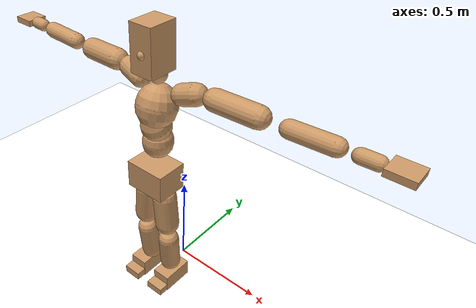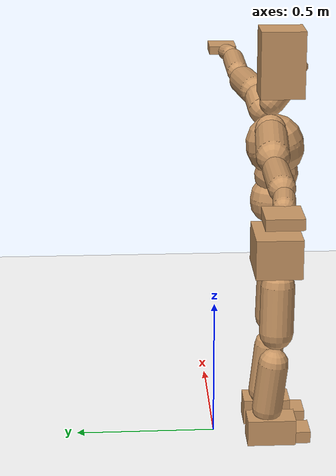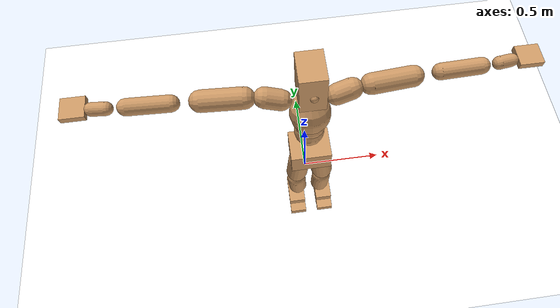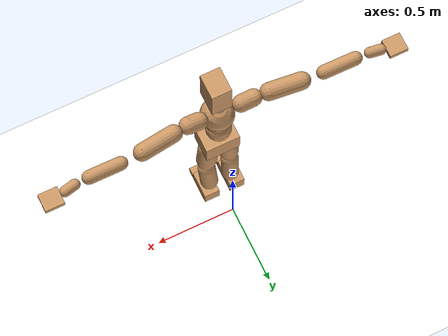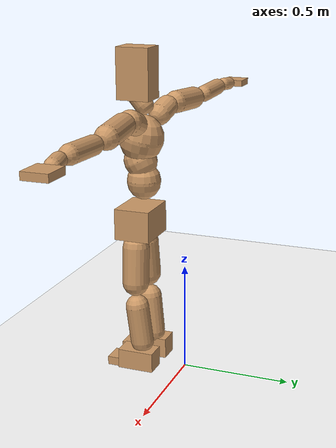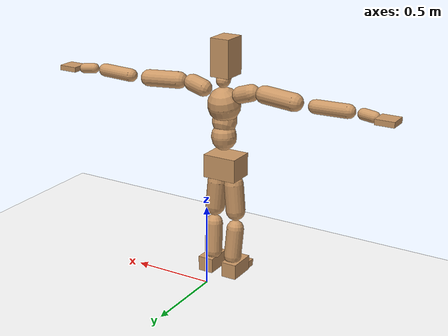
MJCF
<mujoco model="humanoid">
  <option integrator="implicitfast" />

  <visual>
    <global offwidth="1280" offheight="960" />
    <headlight active="1" ambient="0.34 0.34 0.34" diffuse="0.5 0.5 0.5" />
  </visual>

  <default>
    <joint damping="2" stiffness="2" armature="0.01" limited="true" solimplimit="0 .99 .01" />
    <geom condim="1" friction="0.7 0.005 0.0001" solimp=".99 .99 .003" solref="0.015 1" margin="0.001" rgba="0.8 0.6 .4 1" />
    <default class="smplcontact">
      <geom condim="3" friction="1. 0.005 0.0001" solref="0.015 1" solimp="0.98 0.98 0.001" priority="1" />
    </default>
    <default class="stiff_medium">
      <joint stiffness="10" />
    </default>
    <default class="stiff_medium_higher">
      <joint stiffness="50" />
    </default>
    <default class="stiff_high">
      <joint stiffness="100" />
    </default>
  </default>

  <asset>
    <texture type="skybox" builtin="gradient" rgb1="0.99 0.99 0.99" rgb2="0.608 0.828 0.892" width="100" />
    <texture builtin="flat" height="1278" mark="cross" markrgb="1 1 1" name="texgeom" random="0.01" rgb1="0.8 0.6 0.4" rgb2="0.8 0.6 0.4" type="cube" width="127" />
    <texture name="texplane" type="2d" builtin="checker" markrgb="1 1 1" rgb1="0.756 0.772 0.76" rgb2="0.6 0.6 0.6" width="100" height="100" />
    <material name="MatPlane" reflectance="0.5" texture="texplane" texrepeat="1 1" texuniform="true" />
    <material name="geom" texture="texgeom" texuniform="true" />
  </asset>

  <worldbody>
    <light name="tracking_light" pos="0 0 7" dir="0 0 -1" directional="true" cutoff="100" exponent="1" diffuse="1 1 1" specular="0.1 0.1 0.1" mode="trackcom" />
    <camera name="back" pos="0 3 2.4" xyaxes="-1 0 0 0 -1 2" mode="trackcom" />
    <camera name="side" pos="-3 0 2.4" xyaxes="0 -1 0 1 0 2" mode="trackcom" />
    <camera name="front_side" pos="-2.8 -2.8 0.8" xyaxes="0.5 -0.5 0 0.1 0.1 1" mode="trackcom" />
    <geom condim="3" name="floor" pos="0 0 0" rgba="1 1 1 1" size="100 100 .2" type="plane" material="MatPlane" />
    <body name="Pelvis" pos="-0.0018 -0.2233 0.714475" euler="90 0 0">
      <site name="Pelvis" size="0.01" />
      <freejoint name="Pelvis" />
      <geom type="box" pos="-0.0000 -0.0121 -0.0055" size="0.1069 0.0722 0.083" quat="1.0000 0.0000 0.0000 0.0000" density="3165.830099" name="Pelvis" />
      <body name="L_Hip" pos="0.052125 -0.06855 -0.0051">
        <joint name="L_Hip_x" type="hinge" pos="0 0 0" axis="1 0 0" stiffness="6.246094795918367" range="-160.0 22.92" class="stiff_medium" damping="8.291075045961076" armature="0.004891370984683403"/>
        <joint name="L_Hip_y" type="hinge" pos="0 0 0" axis="0 1 0" stiffness="6.283432346938776" range="-70.0 70.0" class="stiff_medium" damping="6.622206330553065" armature="0.006979245460609143"/>
        <joint name="L_Hip_z" type="hinge" pos="0 0 0" axis="0 0 1" stiffness="6.280236020408163" range="-28.65 90.0" class="stiff_medium" damping="5.540637852842338" armature="0.004888139190404853"/>
        <geom type="capsule" density="2040.816327" fromto="0.005175 -0.05625 -0.000675 0.02055 -0.22515 -0.0027" size="0.0615" name="L_Hip" />
        <body name="L_Knee" pos="0.025725 -0.2814 -0.003375">
          <joint name="L_Knee_x" type="hinge" pos="0 0 0" axis="1 0 0" range="-5.16 171.89" damping="4.629153389768343" armature="0.005182973512521496" stiffness="1.292034693877551"/>
          <joint name="L_Knee_y" type="hinge" pos="0 0 0" axis="0 1 0" range="-4.58 6.88" damping="5.469884734588187" armature="0.007381715461698134" stiffness="1.2666279591836735"/>
          <joint name="L_Knee_z" type="hinge" pos="0 0 0" axis="0 0 1" range="-6.88 4.58" damping="4.64167262787214" armature="0.005166231774225998" stiffness="1.3032422448979593"/>
          <geom type="capsule" density="1234.567901" fromto="-0.002025 -0.0597 -0.006525 -0.008175 -0.2388 -0.02625" size="0.0541" name="L_Knee" />
          <body name="L_Ankle" pos="-0.0102 -0.2985 -0.032775">
            <joint name="L_Ankle_x" type="hinge" pos="0 0 0" axis="1 0 0" range="-45.84 45.84" class="stiff_medium" damping="4.385268345779554" armature="0.007122436468331909" stiffness="7.5"/>
            <joint name="L_Ankle_y" type="hinge" pos="0 0 0" axis="0 1 0" range="-74.48 22.92" class="stiff_medium" damping="2.2090505910878853" armature="0.007229488168867756" stiffness="7.5"/>
            <joint name="L_Ankle_z" type="hinge" pos="0 0 0" axis="0 0 1" range="-4.58 4.58" class="stiff_medium" damping="4.627293284407457" armature="0.007930312274045314" stiffness="7.5"/>
            <geom type="box" pos="0.017475 -0.017925 0.01815" size="0.0483 0.0464 0.085" quat="1.0000 0.0000 0.0000 0.0000" density="449.071558" name="L_Ankle" class="smplcontact" />
            <body name="L_Toe" pos="0.0198 -0.04185 0.089475">
              <joint name="L_Toe_x" type="hinge" pos="0 0 0" axis="1 0 0" range="-91.67 22.92" armature="0.0083366778875029" damping="1.5814560905225505" stiffness="1.5"/>
              <joint name="L_Toe_y" type="hinge" pos="0 0 0" axis="0 1 0" range="-4.58 4.58" armature="0.008828055290798205" damping="1.6273956455759186" stiffness="1.5"/>
              <joint name="L_Toe_z" type="hinge" pos="0 0 0" axis="0 0 1" range="-4.58 4.58" armature="0.009821593951991541" damping="1.716530857746945" stiffness="1.5"/>
              <geom type="box" pos="-0.00225 0.004125 0.0186" size="0.0478 0.02 0.0496" quat="1.0000 0.0000 0.0000 0.0000" density="423.206892" name="L_Toe" class="smplcontact" />
            </body>
          </body>
        </body>
      </body>
      <body name="R_Hip" pos="-0.050775 -0.067875 -0.003225">
        <joint name="R_Hip_x" type="hinge" pos="0 0 0" axis="1 0 0" stiffness="6.246094795918367" range="-160.0 22.92" class="stiff_medium" damping="8.291075045961076" armature="0.004891370984683403"/>
        <joint name="R_Hip_y" type="hinge" pos="0 0 0" axis="0 1 0" stiffness="6.283432346938776" range="-70.0 70.0" class="stiff_medium" damping="6.622206330553065" armature="0.006979245460609143"/>
        <joint name="R_Hip_z" type="hinge" pos="0 0 0" axis="0 0 1" stiffness="6.280236020408163" range="-90.0 28.65" class="stiff_medium" damping="5.540637852842338" armature="0.004888139190404853"/>
        <geom type="capsule" density="2040.816327" fromto="-0.005775 -0.057375 -0.00135 -0.02295 -0.229575 -0.005325" size="0.0606" name="R_Hip" />
        <body name="R_Knee" pos="-0.028725 -0.28695 -0.006675">
          <joint name="R_Knee_x" type="hinge" pos="0 0 0" axis="1 0 0" range="-5.16 171.89" damping="4.629153389768343" armature="0.005182973512521496" stiffness="1.292034693877551"/>
          <joint name="R_Knee_y" type="hinge" pos="0 0 0" axis="0 1 0" range="-6.88 4.58" damping="5.469884734588187" armature="0.007381715461698134" stiffness="1.2666279591836735"/>
          <joint name="R_Knee_z" type="hinge" pos="0 0 0" axis="0 0 1" range="-4.58 6.88" damping="4.64167262787214" armature="0.005166231774225998" stiffness="1.3032422448979593"/>
          <geom type="capsule" density="1234.567901" fromto="0.0024 -0.059775 -0.006375 0.00945 -0.239025 -0.02535" size="0.0541" name="R_Knee" />
          <body name="R_Ankle" pos="0.01185 -0.2988 -0.031725">
            <joint name="R_Ankle_x" type="hinge" pos="0 0 0" axis="1 0 0" range="-45.84 45.84" class="stiff_medium" damping="4.385268345779554" armature="0.007122436468331909" stiffness="7.5"/>
            <joint name="R_Ankle_y" type="hinge" pos="0 0 0" axis="0 1 0" range="-22.92 74.48" class="stiff_medium" damping="2.2090505910878853" armature="0.007229488168867756" stiffness="7.5"/>
            <joint name="R_Ankle_z" type="hinge" pos="0 0 0" axis="0 0 1" range="-4.58 4.58" class="stiff_medium" damping="4.627293284407457" armature="0.007930312274045314" stiffness="7.5"/>
            <geom type="box" pos="-0.0159 -0.01305 0.0192" size="0.0483 0.0478 0.0865" quat="1.0000 0.0000 0.0000 0.0000" density="434.700981" name="R_Ankle" class="smplcontact" />
            <body name="R_Toe" pos="-0.01905 -0.036075 0.092475">
              <joint name="R_Toe_x" type="hinge" pos="0 0 0" axis="1 0 0" range="-91.67 22.92" armature="0.0083366778875029" damping="1.5814560905225505" stiffness="1.5"/>
              <joint name="R_Toe_y" type="hinge" pos="0 0 0" axis="0 1 0" range="-4.58 4.58" armature="0.008828055290798205" damping="1.6273956455759186" stiffness="1.5"/>
              <joint name="R_Toe_z" type="hinge" pos="0 0 0" axis="0 0 1" range="-4.58 4.58" armature="0.009821593951991541" damping="1.716530857746945" stiffness="1.5"/>
              <geom type="box" pos="0.00315 0.003375 0.017025" size="0.0479 0.0216 0.0493" quat="1.0000 0.0000 0.0000 0.0000" density="407.384095" name="R_Toe" class="smplcontact" />
            </body>
          </body>
        </body>
      </body>
      <body name="Torso" pos="-0.0025 0.109 -0.0267">
        <joint name="Torso_x" type="hinge" pos="0 0 0" axis="1 0 0" range="-25.78 57.3" class="stiff_medium" damping="16.94478917737132" armature="0.011576079564418827" stiffness="11.023723673469387"/>
        <joint name="Torso_y" type="hinge" pos="0 0 0" axis="0 1 0" range="-57.3 57.3" class="stiff_high" damping="29.11508756713538" armature="0.01937626790595332" stiffness="109.37198124999998"/>
        <joint name="Torso_z" type="hinge" pos="0 0 0" axis="0 0 1" range="-34.38 34.38" class="stiff_high" damping="24.64077151532871" armature="0.014228244849331766" stiffness="106.68350652173912"/>
        <geom type="capsule" density="2040.816327" fromto="0.0025 0.0608 0.0005 0.003 0.0743 0.0006" size="0.0769" name="Torso" />
        <body name="Spine" pos="0.0055 0.1352 0.0011">
          <joint name="Spine_x" type="hinge" pos="0 0 0" axis="1 0 0" stiffness="11.23382224489796" range="-25.78 57.3" class="stiff_medium" damping="17.41106230963078" armature="0.011993349058515351"/>
          <joint name="Spine_y" type="hinge" pos="0 0 0" axis="0 1 0" stiffness="11.67224088888889" range="-57.3 57.3" class="stiff_high" damping="12.051053820080998" armature="0.019440876268553408"/>
          <joint name="Spine_z" type="hinge" pos="0 0 0" axis="0 0 1" stiffness="22.9563125" range="-34.38 34.38" class="stiff_high" damping="16.317554444807215" armature="0.016109257231005366"/>
          <geom type="capsule" density="2040.816327" fromto="0.0007 0.0238 0.0114 0.0008 0.0291 0.014" size="0.0755" name="Spine" />
          <body name="Chest" pos="0.0015 0.0529 0.0254">
            <joint name="Chest_x" type="hinge" pos="0 0 0" axis="1 0 0" stiffness="11.776115531914895" range="-25.78 57.3" class="stiff_medium" damping="18.021102303759772" armature="0.012256829035287797"/>
            <joint name="Chest_y" type="hinge" pos="0 0 0" axis="0 1 0" stiffness="13.448267333333334" range="-57.3 57.3" class="stiff_high" damping="12.937740431789003" armature="0.019447803587290643"/>
            <joint name="Chest_z" type="hinge" pos="0 0 0" axis="0 0 1" stiffness="23.267014782608697" range="-34.38 34.38" class="stiff_high" damping="16.847528832624963" armature="0.01694334891512798"/>
            <geom type="capsule" density="2040.816327" fromto="-0.0009 0.0682 -0.0173 -0.001 0.0833 -0.0212" size="0.1002" name="Chest" />
            <body name="Neck" pos="-0.0028 0.2139 -0.0429">
              <joint name="Neck_x" type="hinge" pos="0 0 0" axis="1 0 0" range="-28.65 57.3" class="stiff_medium_higher" damping="10.000000000000002" armature="0.010000000000000005" stiffness="50.0"/>
              <joint name="Neck_y" type="hinge" pos="0 0 0" axis="0 1 0" range="-40.11 40.11" class="stiff_medium_higher" damping="10.0" armature="0.01" stiffness="50.0"/>
              <joint name="Neck_z" type="hinge" pos="0 0 0" axis="0 0 1" range="-40.11 40.11" class="stiff_medium_higher" damping="9.999999999999998" armature="0.009999999999999998" stiffness="50.0"/>
              <geom type="capsule" density="1000" fromto="0.001 0.013 0.0103 0.0041 0.052 0.0411" size="0.0436" name="Neck" />
              <body name="Head" pos="0.0052 0.065 0.0513">
                <joint name="Head_x" type="hinge" pos="0 0 0" axis="1 0 0" range="-28.65 57.3" class="stiff_medium_higher" damping="2.000000000000003" armature="0.010000000000000031" stiffness="50.0"/>
                <joint name="Head_y" type="hinge" pos="0 0 0" axis="0 1 0" range="-40.11 40.11" class="stiff_medium_higher" damping="2.0" armature="0.01" stiffness="50.0"/>
                <joint name="Head_z" type="hinge" pos="0 0 0" axis="0 0 1" range="-40.11 40.11" class="stiff_medium_higher" damping="2.0000000000000036" armature="0.010000000000000035" stiffness="50.0"/>
                <geom type="box" pos="-0.0042 0.0876 -0.0116" size="0.0606 0.1154 0.076" quat="1.0000 0.0000 0.0000 0.0000" density="1018.069894" name="Head" />
                <geom type="capsule" name="nose" size="0.02 0.01" pos="0 0.07 0.05" quat="1 0 0 0" mass="0" contype="0" conaffinity="0" />
              </body>
            </body>
            <body name="L_Thorax" pos="0.10244 0.15821 -0.04433">
              <joint name="L_Thorax_x" type="hinge" pos="0 0 0" axis="1 0 0" range="-10.89 4.58" class="stiff_medium_higher" damping="31.589735797958035" armature="0.01622387350427049" stiffness="76.88603214285715"/>
              <joint name="L_Thorax_y" type="hinge" pos="0 0 0" axis="0 1 0" range="-28.65 17.19" class="stiff_medium_higher" damping="34.899895599714064" armature="0.019674963071755692" stiffness="77.38278265306123"/>
              <joint name="L_Thorax_z" type="hinge" pos="0 0 0" axis="0 0 1" range="-31.51 40.11" class="stiff_medium_higher" damping="34.90146227880155" armature="0.01967812597720369" stiffness="77.37729132653061"/>
              <geom type="capsule" density="1000" fromto="0.02366 0.00793 -0.00234 0.09464 0.03172 -0.00923" size="0.0521" name="L_Thorax" />
              <body name="L_Shoulder" pos="0.1183 0.03965 -0.01157">
                <joint name="L_Shoulder_x" type="hinge" pos="0 0 0" axis="1 0 0" range="-97.4 97.4" class="stiff_medium" damping="9.029989056679042" armature="0.01480006370901417" stiffness="15.304120000000001"/>
                <joint name="L_Shoulder_y" type="hinge" pos="0 0 0" axis="0 1 0" range="-108.86 80.21" class="stiff_medium" damping="10.416659800941957" armature="0.019521721968520905" stiffness="15.439610408163267"/>
                <joint name="L_Shoulder_z" type="hinge" pos="0 0 0" axis="0 0 1" range="-97.4 85.94" class="stiff_medium" damping="10.414978319288075" armature="0.0195255276816531" stiffness="15.431617857142857"/>
                <geom type="capsule" density="1000" fromto="0.06747 -0.00338 -0.00715 0.27001 -0.01326 -0.0286" size="0.0517" name="L_Shoulder" />
                <body name="L_Elbow" pos="0.33748 -0.01664 -0.03575">
                  <joint name="L_Elbow_x" type="hinge" pos="0 0 0" axis="1 0 0" range="-17.19 4.58" damping="6.8939359651315035" armature="0.01265535405303165" stiffness="3.0043475918367353"/>
                  <joint name="L_Elbow_y" type="hinge" pos="0 0 0" axis="0 1 0" range="-180.0 17.19" damping="8.400044856786575" armature="0.018780901424265504" stiffness="3.005638632653061"/>
                  <joint name="L_Elbow_z" type="hinge" pos="0 0 0" axis="0 0 1" range="-100.84 4.58" damping="8.401427491655662" armature="0.01880082195466482" stiffness="3.003442469387755"/>
                  <geom type="capsule" density="1000" fromto="0.06474 0.00234 -0.00026 0.25922 0.00936 -0.00117" size="0.0405" name="L_Elbow" />
                  <body name="L_Wrist" pos="0.32396 0.0117 -0.00156">
                    <joint name="L_Wrist_x" type="hinge" pos="0 0 0" axis="1 0 0" range="-180.0 22.92" armature="0.01229032794172828" damping="2.595783394027925" stiffness="2.7412171020408165"/>
                    <joint name="L_Wrist_y" type="hinge" pos="0 0 0" axis="0 1 0" range="-17.19 17.19" armature="0.016530608092611622" damping="3.0218064127612396" stiffness="2.7619413469387752"/>
                    <joint name="L_Wrist_z" type="hinge" pos="0 0 0" axis="0 0 1" range="-22.92 22.92" armature="0.016761001490565915" damping="3.0381836187287736" stiffness="2.7535823877551024"/>
                    <geom type="capsule" density="1000" fromto="0.02184 -0.00208 -0.0039 0.08736 -0.00845 -0.0156" size="0.0318" name="L_Wrist" class="smplcontact" />
                    <body name="L_Hand" pos="0.1092 -0.01066 -0.01937">
                      <joint name="L_Hand_x" type="hinge" pos="0 0 0" axis="1 0 0" range="-17.19 17.19" armature="0.010300606507591686" damping="2.3143714878877324" stiffness="2.5999999999999996"/>
                      <joint name="L_Hand_y" type="hinge" pos="0 0 0" axis="0 1 0" range="-51.57 51.57" armature="0.013635420978089528" damping="2.662784052191719" stiffness="2.5999999999999996"/>
                      <joint name="L_Hand_z" type="hinge" pos="0 0 0" axis="0 0 1" range="-91.67 91.67" armature="0.014524361339042115" damping="2.7482117633657523" stiffness="2.5999999999999996"/>
                      <geom type="box" pos="0.06409 0.0013 -0.00754" size="0.0585 0.0158 0.0538" quat="1.0000 0.0000 0.0000 0.0000" density="400.552564" name="L_Hand" class="smplcontact" />
                    </body>
                  </body>
                </body>
              </body>
            </body>
            <body name="R_Thorax" pos="-0.10634 0.15444 -0.05018">
              <joint name="R_Thorax_x" type="hinge" pos="0 0 0" axis="1 0 0" range="-10.89 4.58" class="stiff_medium_higher" damping="31.589735797958035" armature="0.01622387350427049" stiffness="76.88603214285715"/>
              <joint name="R_Thorax_y" type="hinge" pos="0 0 0" axis="0 1 0" range="-17.19 28.65" class="stiff_medium_higher" damping="34.899895599714064" armature="0.019674963071755692" stiffness="77.38278265306123"/>
              <joint name="R_Thorax_z" type="hinge" pos="0 0 0" axis="0 0 1" range="-40.11 31.51" class="stiff_medium_higher" damping="34.90146227880155" armature="0.01967812597720369" stiffness="77.37729132653061"/>
              <geom type="capsule" density="1000" fromto="-0.02496 0.00845 -0.00234 -0.09984 0.0338 -0.00949" size="0.0511" name="R_Thorax" />
              <body name="R_Shoulder" pos="-0.1248 0.04238 -0.01183">
                <joint name="R_Shoulder_x" type="hinge" pos="0 0 0" axis="1 0 0" range="-97.4 97.4" class="stiff_medium" damping="9.029989056679042" armature="0.01480006370901417" stiffness="15.304120000000001"/>
                <joint name="R_Shoulder_y" type="hinge" pos="0 0 0" axis="0 1 0" range="-80.21 108.86" class="stiff_medium" damping="10.416659800941957" armature="0.019521721968520905" stiffness="15.439610408163267"/>
                <joint name="R_Shoulder_z" type="hinge" pos="0 0 0" axis="0 0 1" range="-85.94 97.4" class="stiff_medium" damping="10.414978319288075" armature="0.0195255276816531" stiffness="15.431617857142857"/>
                <geom type="capsule" density="1000" fromto="-0.06591 -0.00351 -0.00559 -0.2639 -0.01391 -0.02223" size="0.0531" name="R_Shoulder" />
                <body name="R_Elbow" pos="-0.32981 -0.01729 -0.02782">
                  <joint name="R_Elbow_x" type="hinge" pos="0 0 0" axis="1 0 0" range="-17.19 4.58" damping="6.8939359651315035" armature="0.01265535405303165" stiffness="3.0043475918367353"/>
                  <joint name="R_Elbow_y" type="hinge" pos="0 0 0" axis="0 1 0" range="-17.19 180.0" damping="8.400044856786575" armature="0.018780901424265504" stiffness="3.005638632653061"/>
                  <joint name="R_Elbow_z" type="hinge" pos="0 0 0" axis="0 0 1" range="-4.58 100.84" damping="8.401427491655662" armature="0.01880082195466482" stiffness="3.003442469387755"/>
                  <geom type="capsule" density="1000" fromto="-0.06643 0.00208 -0.00143 -0.26546 0.00806 -0.00572" size="0.0408" name="R_Elbow" />
                  <body name="R_Wrist" pos="-0.33189 0.01014 -0.00728">
                    <joint name="R_Wrist_x" type="hinge" pos="0 0 0" axis="1 0 0" range="-180.0 22.92" armature="0.01229032794172828" damping="2.595783394027925" stiffness="2.7412171020408165"/>
                    <joint name="R_Wrist_y" type="hinge" pos="0 0 0" axis="0 1 0" range="-17.19 17.19" armature="0.016530608092611622" damping="3.0218064127612396" stiffness="2.7619413469387752"/>
                    <joint name="R_Wrist_z" type="hinge" pos="0 0 0" axis="0 0 1" range="-22.92 22.92" armature="0.016761001490565915" damping="3.0381836187287736" stiffness="2.7535823877551024"/>
                    <geom type="capsule" density="1000" fromto="-0.02197 -0.00156 -0.00273 -0.08801 -0.00637 -0.01079" size="0.0326" name="R_Wrist" class="smplcontact" />
                    <body name="R_Hand" pos="-0.10998 -0.00793 -0.01339">
                      <joint name="R_Hand_x" type="hinge" pos="0 0 0" axis="1 0 0" range="-17.19 17.19" armature="0.010300606507591686" damping="2.3143714878877324" stiffness="2.5999999999999996"/>
                      <joint name="R_Hand_y" type="hinge" pos="0 0 0" axis="0 1 0" range="-51.57 51.57" armature="0.013635420978089528" damping="2.662784052191719" stiffness="2.5999999999999996"/>
                      <joint name="R_Hand_z" type="hinge" pos="0 0 0" axis="0 0 1" range="-91.67 91.67" armature="0.014524361339042115" damping="2.7482117633657523" stiffness="2.5999999999999996"/>
                      <geom type="box" pos="-0.06006 -0.00117 -0.01027" size="0.0569 0.0164 0.0546" quat="1.0000 0.0000 0.0000 0.0000" density="403.679611" name="R_Hand" class="smplcontact" />
                    </body>
                  </body>
                </body>
              </body>
            </body>
          </body>
        </body>
      </body>
    </body>
  </worldbody>
  <actuator>
    <general name="L_Hip_x" joint="L_Hip_x" biastype="affine" gainprm="179.46908180691764" biasprm="-134.4938865848036 -112.42970632653059 -1.1054766727948102" ctrllimited="true" ctrlrange="-1 1" forcerange="-224.85941265306118 224.85941265306118" />
    <general name="L_Hip_y" joint="L_Hip_y" biastype="affine" gainprm="138.1798943032993" biasprm="0.0 -113.10178224489796 -1.324441266110613" ctrllimited="true" ctrlrange="-1 1" forcerange="-226.20356448979592 226.20356448979592" />
    <general name="L_Hip_z" joint="L_Hip_z" biastype="affine" gainprm="117.04788889139031" biasprm="60.52160120932823 -113.04424836734694 -1.1081275705684677" ctrllimited="true" ctrlrange="-1 1" forcerange="-226.08849673469388 226.08849673469388" />
    <general name="L_Knee_x" joint="L_Knee_x" biastype="affine" gainprm="179.66355466802756" biasprm="169.1912141756579 -116.2831224489796 -1.1572883474420856" ctrllimited="true" ctrlrange="-1 1" forcerange="-232.5662448979592 232.5662448979592" />
    <general name="L_Knee_y" joint="L_Knee_y" biastype="affine" gainprm="11.400491346869197" biasprm="2.2880567275566452 -113.99651632653062 -1.3674711836470468" ctrllimited="true" ctrlrange="-1 1" forcerange="-227.99303265306125 227.99303265306125" />
    <general name="L_Knee_z" joint="L_Knee_z" biastype="affine" gainprm="11.730044191831292" biasprm="-2.3541973508910967 -117.29180204081634 -1.160418156968035" ctrllimited="true" ctrlrange="-1 1" forcerange="-234.58360408163267 234.58360408163267" />
    <general name="L_Ankle_x" joint="L_Ankle_x" biastype="affine" gainprm="54.00397771520855" biasprm="0.0 -67.5 -1.4617561152598515" ctrllimited="true" ctrlrange="-1 1" forcerange="-135.0 135.0" />
    <general name="L_Ankle_y" joint="L_Ankle_y" biastype="affine" gainprm="57.37333583618361" biasprm="-30.371346978579332 -67.5 -1.47270039405859" ctrllimited="true" ctrlrange="-1 1" forcerange="-135.0 135.0" />
    <general name="L_Ankle_z" joint="L_Ankle_z" biastype="affine" gainprm="5.395685382540469" biasprm="0.0 -67.5 -1.5424310948024855" ctrllimited="true" ctrlrange="-1 1" forcerange="-135.0 135.0" />
    <general name="L_Toe_x" joint="L_Toe_x" biastype="affine" gainprm="53.999265326228155" biasprm="-32.39767424014474 -54.0 -0.6325824362090202" ctrllimited="true" ctrlrange="-1 1" forcerange="-108.0 108.0" />
    <general name="L_Toe_y" joint="L_Toe_y" biastype="affine" gainprm="4.3165483060323755" biasprm="0.0 -54.0 -0.6509582582303675" ctrllimited="true" ctrlrange="-1 1" forcerange="-108.0 108.0" />
    <general name="L_Toe_z" joint="L_Toe_z" biastype="affine" gainprm="4.3165483060323755" biasprm="0.0 -54.0 -0.686612343098778" ctrllimited="true" ctrlrange="-1 1" forcerange="-108.0 108.0" />
    <general name="R_Hip_x" joint="R_Hip_x" biastype="affine" gainprm="179.46908180691764" biasprm="-134.4938865848036 -112.42970632653059 -1.1054766727948102" ctrllimited="true" ctrlrange="-1 1" forcerange="-224.85941265306118 224.85941265306118" />
    <general name="R_Hip_y" joint="R_Hip_y" biastype="affine" gainprm="138.1798943032993" biasprm="0.0 -113.10178224489796 -1.324441266110613" ctrllimited="true" ctrlrange="-1 1" forcerange="-226.20356448979592 226.20356448979592" />
    <general name="R_Hip_z" joint="R_Hip_z" biastype="affine" gainprm="117.04788889139031" biasprm="-60.52160120932823 -113.04424836734694 -1.1081275705684677" ctrllimited="true" ctrlrange="-1 1" forcerange="-226.08849673469388 226.08849673469388" />
    <general name="R_Knee_x" joint="R_Knee_x" biastype="affine" gainprm="179.66355466802756" biasprm="169.1912141756579 -116.2831224489796 -1.1572883474420856" ctrllimited="true" ctrlrange="-1 1" forcerange="-232.5662448979592 232.5662448979592" />
    <general name="R_Knee_y" joint="R_Knee_y" biastype="affine" gainprm="11.400491346869197" biasprm="-2.2880567275566452 -113.99651632653062 -1.3674711836470468" ctrllimited="true" ctrlrange="-1 1" forcerange="-227.99303265306125 227.99303265306125" />
    <general name="R_Knee_z" joint="R_Knee_z" biastype="affine" gainprm="11.730044191831292" biasprm="2.3541973508910967 -117.29180204081634 -1.160418156968035" ctrllimited="true" ctrlrange="-1 1" forcerange="-234.58360408163267 234.58360408163267" />
    <general name="R_Ankle_x" joint="R_Ankle_x" biastype="affine" gainprm="54.00397771520855" biasprm="0.0 -67.5 -1.4617561152598515" ctrllimited="true" ctrlrange="-1 1" forcerange="-135.0 135.0" />
    <general name="R_Ankle_y" joint="R_Ankle_y" biastype="affine" gainprm="57.37333583618361" biasprm="30.371346978579332 -67.5 -1.47270039405859" ctrllimited="true" ctrlrange="-1 1" forcerange="-135.0 135.0" />
    <general name="R_Ankle_z" joint="R_Ankle_z" biastype="affine" gainprm="5.395685382540469" biasprm="0.0 -67.5 -1.5424310948024855" ctrllimited="true" ctrlrange="-1 1" forcerange="-135.0 135.0" />
    <general name="R_Toe_x" joint="R_Toe_x" biastype="affine" gainprm="53.999265326228155" biasprm="-32.39767424014474 -54.0 -0.6325824362090202" ctrllimited="true" ctrlrange="-1 1" forcerange="-108.0 108.0" />
    <general name="R_Toe_y" joint="R_Toe_y" biastype="affine" gainprm="4.3165483060323755" biasprm="0.0 -54.0 -0.6509582582303675" ctrllimited="true" ctrlrange="-1 1" forcerange="-108.0 108.0" />
    <general name="R_Toe_z" joint="R_Toe_z" biastype="affine" gainprm="4.3165483060323755" biasprm="0.0 -54.0 -0.686612343098778" ctrllimited="true" ctrlrange="-1 1" forcerange="-108.0 108.0" />
    <general name="Torso_x" joint="Torso_x" biastype="affine" gainprm="191.81537709933156" biasprm="72.77347961207185 -264.5693681632653 -4.518610447299019" ctrllimited="true" ctrlrange="-1 1" forcerange="-396.85405224489796 396.85405224489796" />
    <general name="Torso_y" joint="Torso_y" biastype="affine" gainprm="262.51209058192023" biasprm="0.0 -262.492755 -5.823017513427076" ctrllimited="true" ctrlrange="-1 1" forcerange="-393.7391324999999 393.7391324999999" />
    <general name="Torso_z" joint="Torso_z" biastype="affine" gainprm="153.63556556747483" biasprm="0.0 -256.0404156521739 -4.9281543030657415" ctrllimited="true" ctrlrange="-1 1" forcerange="-384.0606234782608 384.0606234782608" />
    <general name="Spine_x" joint="Spine_x" biastype="affine" gainprm="195.47114151254812" biasprm="74.16045234082229 -269.61173387755105 -4.6429499492348745" ctrllimited="true" ctrlrange="-1 1" forcerange="-404.41760081632657 404.41760081632657" />
    <general name="Spine_y" joint="Spine_y" biastype="affine" gainprm="280.1544163778229" biasprm="0.0 -280.13378133333333 -6.025526910040499" ctrllimited="true" ctrlrange="-1 1" forcerange="-420.200672 420.200672" />
    <general name="Spine_z" joint="Spine_z" biastype="affine" gainprm="165.29762515644848" biasprm="0.0 -275.47575 -5.439184814935738" ctrllimited="true" ctrlrange="-1 1" forcerange="-413.213625 413.213625" />
    <general name="Chest_x" joint="Chest_x" biastype="affine" gainprm="204.90717188021173" biasprm="77.74041956745634 -282.62677276595747 -4.8056272810026055" ctrllimited="true" ctrlrange="-1 1" forcerange="-423.94015914893623 423.94015914893623" />
    <general name="Chest_y" joint="Chest_y" biastype="affine" gainprm="322.78219083444463" biasprm="0.0 -322.758416 -6.468870215894501" ctrllimited="true" ctrlrange="-1 1" forcerange="-484.1376240000001 484.1376240000001" />
    <general name="Chest_z" joint="Chest_z" biastype="affine" gainprm="167.53484637592376" biasprm="0.0 -279.20417739130437 -5.615842944208321" ctrllimited="true" ctrlrange="-1 1" forcerange="-418.8062660869566 418.8062660869566" />
    <general name="Neck_x" joint="Neck_x" biastype="affine" gainprm="27.00198885760427" biasprm="9.000662952534757 -36.0 -0.8000000000000003" ctrllimited="true" ctrlrange="-1 1" forcerange="-72.0 72.0" />
    <general name="Neck_y" joint="Neck_y" biastype="affine" gainprm="25.20185626709732" biasprm="0.0 -36.0 -0.8" ctrllimited="true" ctrlrange="-1 1" forcerange="-72.0 72.0" />
    <general name="Neck_z" joint="Neck_z" biastype="affine" gainprm="25.20185626709732" biasprm="0.0 -36.0 -0.7999999999999999" ctrllimited="true" ctrlrange="-1 1" forcerange="-72.0 72.0" />
    <general name="Head_x" joint="Head_x" biastype="affine" gainprm="18.001325905069514" biasprm="6.000441968356505 -24.0 -0.8000000000000013" ctrllimited="true" ctrlrange="-1 1" forcerange="-48.0 48.0" />
    <general name="Head_y" joint="Head_y" biastype="affine" gainprm="16.801237511398213" biasprm="0.0 -24.0 -0.8" ctrllimited="true" ctrlrange="-1 1" forcerange="-48.0 48.0" />
    <general name="Head_z" joint="Head_z" biastype="affine" gainprm="16.801237511398213" biasprm="0.0 -24.0 -0.8000000000000015" ctrllimited="true" ctrlrange="-1 1" forcerange="-48.0 48.0" />
    <general name="L_Thorax_x" joint="L_Thorax_x" biastype="affine" gainprm="24.911299101430362" biasprm="-10.160975910150333 -184.52647714285715 -2.527178863836643" ctrllimited="true" ctrlrange="-1 1" forcerange="-369.0529542857143 369.0529542857143" />
    <general name="L_Thorax_y" joint="L_Thorax_y" biastype="affine" gainprm="74.29294346554212" biasprm="-18.57323586638553 -185.71867836734694 -2.7919916479771256" ctrllimited="true" ctrlrange="-1 1" forcerange="-371.4373567346939 371.4373567346939" />
    <general name="L_Thorax_z" joint="L_Thorax_z" biastype="affine" gainprm="116.06638363736599" biasprm="13.937041319203399 -185.70549918367348 -2.7921169823041243" ctrllimited="true" ctrlrange="-1 1" forcerange="-371.41099836734696 371.41099836734696" />
    <general name="L_Shoulder_x" joint="L_Shoulder_x" biastype="affine" gainprm="124.8779970044095" biasprm="0.0 -73.459776 -2.4079970817810783" ctrllimited="true" ctrlrange="-1 1" forcerange="-146.919552 146.919552" />
    <general name="L_Shoulder_y" joint="L_Shoulder_y" biastype="affine" gainprm="122.27778721627745" biasprm="-18.528897253643354 -74.11012995918368 -2.777775946917856" ctrllimited="true" ctrlrange="-1 1" forcerange="-148.22025991836736 148.22025991836736" />
    <general name="L_Shoulder_z" joint="L_Shoulder_z" biastype="affine" gainprm="118.51062714799397" biasprm="-7.40772219437119 -74.0717657142857 -2.7773275518101532" ctrllimited="true" ctrlrange="-1 1" forcerange="-148.1435314285714 148.1435314285714" />
    <general name="L_Elbow_x" joint="L_Elbow_x" biastype="affine" gainprm="20.54747587592092" biasprm="-11.901868203737386 -108.15651330612246 -1.1030297544210406" ctrllimited="true" ctrlrange="-1 1" forcerange="-216.31302661224493 216.31302661224493" />
    <general name="L_Elbow_y" joint="L_Elbow_y" biastype="affine" gainprm="186.19650463217005" biasprm="-153.73321628461693 -108.20299077551019 -1.3440071770858522" ctrllimited="true" ctrlrange="-1 1" forcerange="-216.40598155102037 216.40598155102037" />
    <general name="L_Elbow_z" joint="L_Elbow_z" biastype="affine" gainprm="99.4700192692226" biasprm="-90.82701626688834 -108.12392889795919 -1.344228398664906" ctrllimited="true" ctrlrange="-1 1" forcerange="-216.24785779591838 216.24785779591838" />
    <general name="L_Wrist_x" joint="L_Wrist_x" biastype="affine" gainprm="29.125065357690858" biasprm="-22.545659700305933 -16.447302612244897 -1.03831335761117" ctrllimited="true" ctrlrange="-1 1" forcerange="-32.894605224489794 32.894605224489794" />
    <general name="L_Wrist_y" joint="L_Wrist_y" biastype="affine" gainprm="4.971860631693158" biasprm="0.0 -16.571648081632652 -1.208722565104496" ctrllimited="true" ctrlrange="-1 1" forcerange="-33.143296163265305 33.143296163265305" />
    <general name="L_Wrist_z" joint="L_Wrist_z" biastype="affine" gainprm="6.609084529125214" biasprm="0.0 -16.521494326530615 -1.2152734474915095" ctrllimited="true" ctrlrange="-1 1" forcerange="-33.04298865306123 33.04298865306123" />
    <general name="L_Hand_x" joint="L_Hand_x" biastype="affine" gainprm="4.680344735318074" biasprm="0.0 -15.599999999999998 -0.925748595155093" ctrllimited="true" ctrlrange="-1 1" forcerange="-31.199999999999996 31.199999999999996" />
    <general name="L_Hand_y" joint="L_Hand_y" biastype="affine" gainprm="14.041034205954219" biasprm="0.0 -15.599999999999998 -1.0651136208766878" ctrllimited="true" ctrlrange="-1 1" forcerange="-31.199999999999996 31.199999999999996" />
    <general name="L_Hand_z" joint="L_Hand_z" biastype="affine" gainprm="24.959115874729946" biasprm="0.0 -15.599999999999998 -1.099284705346301" ctrllimited="true" ctrlrange="-1 1" forcerange="-31.199999999999996 31.199999999999996" />
    <general name="R_Thorax_x" joint="R_Thorax_x" biastype="affine" gainprm="24.911299101430362" biasprm="-10.160975910150333 -184.52647714285715 -2.527178863836643" ctrllimited="true" ctrlrange="-1 1" forcerange="-369.0529542857143 369.0529542857143" />
    <general name="R_Thorax_y" joint="R_Thorax_y" biastype="affine" gainprm="74.29294346554212" biasprm="18.57323586638552 -185.71867836734694 -2.7919916479771256" ctrllimited="true" ctrlrange="-1 1" forcerange="-371.4373567346939 371.4373567346939" />
    <general name="R_Thorax_z" joint="R_Thorax_z" biastype="affine" gainprm="116.06638363736599" biasprm="-13.937041319203399 -185.70549918367348 -2.7921169823041243" ctrllimited="true" ctrlrange="-1 1" forcerange="-371.41099836734696 371.41099836734696" />
    <general name="R_Shoulder_x" joint="R_Shoulder_x" biastype="affine" gainprm="124.8779970044095" biasprm="0.0 -73.459776 -2.4079970817810783" ctrllimited="true" ctrlrange="-1 1" forcerange="-146.919552 146.919552" />
    <general name="R_Shoulder_y" joint="R_Shoulder_y" biastype="affine" gainprm="122.27778721627745" biasprm="18.528897253643354 -74.11012995918368 -2.777775946917856" ctrllimited="true" ctrlrange="-1 1" forcerange="-148.22025991836736 148.22025991836736" />
    <general name="R_Shoulder_z" joint="R_Shoulder_z" biastype="affine" gainprm="118.51062714799397" biasprm="7.407722194371173 -74.0717657142857 -2.7773275518101532" ctrllimited="true" ctrlrange="-1 1" forcerange="-148.1435314285714 148.1435314285714" />
    <general name="R_Elbow_x" joint="R_Elbow_x" biastype="affine" gainprm="20.54747587592092" biasprm="-11.901868203737386 -108.15651330612246 -1.1030297544210406" ctrllimited="true" ctrlrange="-1 1" forcerange="-216.31302661224493 216.31302661224493" />
    <general name="R_Elbow_y" joint="R_Elbow_y" biastype="affine" gainprm="186.19650463217005" biasprm="153.73321628461693 -108.20299077551019 -1.3440071770858522" ctrllimited="true" ctrlrange="-1 1" forcerange="-216.40598155102037 216.40598155102037" />
    <general name="R_Elbow_z" joint="R_Elbow_z" biastype="affine" gainprm="99.4700192692226" biasprm="90.82701626688832 -108.12392889795919 -1.344228398664906" ctrllimited="true" ctrlrange="-1 1" forcerange="-216.24785779591838 216.24785779591838" />
    <general name="R_Wrist_x" joint="R_Wrist_x" biastype="affine" gainprm="29.125065357690858" biasprm="-22.545659700305933 -16.447302612244897 -1.03831335761117" ctrllimited="true" ctrlrange="-1 1" forcerange="-32.894605224489794 32.894605224489794" />
    <general name="R_Wrist_y" joint="R_Wrist_y" biastype="affine" gainprm="4.971860631693158" biasprm="0.0 -16.571648081632652 -1.208722565104496" ctrllimited="true" ctrlrange="-1 1" forcerange="-33.143296163265305 33.143296163265305" />
    <general name="R_Wrist_z" joint="R_Wrist_z" biastype="affine" gainprm="6.609084529125214" biasprm="0.0 -16.521494326530615 -1.2152734474915095" ctrllimited="true" ctrlrange="-1 1" forcerange="-33.04298865306123 33.04298865306123" />
    <general name="R_Hand_x" joint="R_Hand_x" biastype="affine" gainprm="4.680344735318074" biasprm="0.0 -15.599999999999998 -0.925748595155093" ctrllimited="true" ctrlrange="-1 1" forcerange="-31.199999999999996 31.199999999999996" />
    <general name="R_Hand_y" joint="R_Hand_y" biastype="affine" gainprm="14.041034205954219" biasprm="0.0 -15.599999999999998 -1.0651136208766878" ctrllimited="true" ctrlrange="-1 1" forcerange="-31.199999999999996 31.199999999999996" />
    <general name="R_Hand_z" joint="R_Hand_z" biastype="affine" gainprm="24.959115874729946" biasprm="0.0 -15.599999999999998 -1.099284705346301" ctrllimited="true" ctrlrange="-1 1" forcerange="-31.199999999999996 31.199999999999996" />
  </actuator>
  <contact>
    <exclude body1="Torso" body2="Chest" />
    <exclude body1="Head" body2="Chest" />
    <exclude body1="R_Knee" body2="R_Toe" />
    <exclude body1="R_Knee" body2="L_Ankle" />
    <exclude body1="R_Knee" body2="L_Toe" />
    <exclude body1="L_Knee" body2="L_Toe" />
    <exclude body1="L_Knee" body2="R_Ankle" />
    <exclude body1="L_Knee" body2="R_Toe" />
    <exclude body1="L_Shoulder" body2="Chest" />
    <exclude body1="R_Shoulder" body2="Chest" />
  </contact>
  <sensor>
    <framelinvel name="sensor_Pelvis_framelinvel" objtype="xbody" objname="Pelvis" />
    <framelinvel name="sensor_L_Hip_framelinvel" objtype="xbody" objname="L_Hip" />
    <framelinvel name="sensor_L_Knee_framelinvel" objtype="xbody" objname="L_Knee" />
    <framelinvel name="sensor_L_Ankle_framelinvel" objtype="xbody" objname="L_Ankle" />
    <framelinvel name="sensor_L_Toe_framelinvel" objtype="xbody" objname="L_Toe" />
    <framelinvel name="sensor_R_Hip_framelinvel" objtype="xbody" objname="R_Hip" />
    <framelinvel name="sensor_R_Knee_framelinvel" objtype="xbody" objname="R_Knee" />
    <framelinvel name="sensor_R_Ankle_framelinvel" objtype="xbody" objname="R_Ankle" />
    <framelinvel name="sensor_R_Toe_framelinvel" objtype="xbody" objname="R_Toe" />
    <framelinvel name="sensor_Torso_framelinvel" objtype="xbody" objname="Torso" />
    <framelinvel name="sensor_Spine_framelinvel" objtype="xbody" objname="Spine" />
    <framelinvel name="sensor_Chest_framelinvel" objtype="xbody" objname="Chest" />
    <framelinvel name="sensor_Neck_framelinvel" objtype="xbody" objname="Neck" />
    <framelinvel name="sensor_Head_framelinvel" objtype="xbody" objname="Head" />
    <framelinvel name="sensor_L_Thorax_framelinvel" objtype="xbody" objname="L_Thorax" />
    <framelinvel name="sensor_L_Shoulder_framelinvel" objtype="xbody" objname="L_Shoulder" />
    <framelinvel name="sensor_L_Elbow_framelinvel" objtype="xbody" objname="L_Elbow" />
    <framelinvel name="sensor_L_Wrist_framelinvel" objtype="xbody" objname="L_Wrist" />
    <framelinvel name="sensor_L_Hand_framelinvel" objtype="xbody" objname="L_Hand" />
    <framelinvel name="sensor_R_Thorax_framelinvel" objtype="xbody" objname="R_Thorax" />
    <framelinvel name="sensor_R_Shoulder_framelinvel" objtype="xbody" objname="R_Shoulder" />
    <framelinvel name="sensor_R_Elbow_framelinvel" objtype="xbody" objname="R_Elbow" />
    <framelinvel name="sensor_R_Wrist_framelinvel" objtype="xbody" objname="R_Wrist" />
    <framelinvel name="sensor_R_Hand_framelinvel" objtype="xbody" objname="R_Hand" />
    <frameangvel name="sensor_Pelvis_frameangvel" objtype="xbody" objname="Pelvis" />
    <frameangvel name="sensor_L_Hip_frameangvel" objtype="xbody" objname="L_Hip" />
    <frameangvel name="sensor_L_Knee_frameangvel" objtype="xbody" objname="L_Knee" />
    <frameangvel name="sensor_L_Ankle_frameangvel" objtype="xbody" objname="L_Ankle" />
    <frameangvel name="sensor_L_Toe_frameangvel" objtype="xbody" objname="L_Toe" />
    <frameangvel name="sensor_R_Hip_frameangvel" objtype="xbody" objname="R_Hip" />
    <frameangvel name="sensor_R_Knee_frameangvel" objtype="xbody" objname="R_Knee" />
    <frameangvel name="sensor_R_Ankle_frameangvel" objtype="xbody" objname="R_Ankle" />
    <frameangvel name="sensor_R_Toe_frameangvel" objtype="xbody" objname="R_Toe" />
    <frameangvel name="sensor_Torso_frameangvel" objtype="xbody" objname="Torso" />
    <frameangvel name="sensor_Spine_frameangvel" objtype="xbody" objname="Spine" />
    <frameangvel name="sensor_Chest_frameangvel" objtype="xbody" objname="Chest" />
    <frameangvel name="sensor_Neck_frameangvel" objtype="xbody" objname="Neck" />
    <frameangvel name="sensor_Head_frameangvel" objtype="xbody" objname="Head" />
    <frameangvel name="sensor_L_Thorax_frameangvel" objtype="xbody" objname="L_Thorax" />
    <frameangvel name="sensor_L_Shoulder_frameangvel" objtype="xbody" objname="L_Shoulder" />
    <frameangvel name="sensor_L_Elbow_frameangvel" objtype="xbody" objname="L_Elbow" />
    <frameangvel name="sensor_L_Wrist_frameangvel" objtype="xbody" objname="L_Wrist" />
    <frameangvel name="sensor_L_Hand_frameangvel" objtype="xbody" objname="L_Hand" />
    <frameangvel name="sensor_R_Thorax_frameangvel" objtype="xbody" objname="R_Thorax" />
    <frameangvel name="sensor_R_Shoulder_frameangvel" objtype="xbody" objname="R_Shoulder" />
    <frameangvel name="sensor_R_Elbow_frameangvel" objtype="xbody" objname="R_Elbow" />
    <frameangvel name="sensor_R_Wrist_frameangvel" objtype="xbody" objname="R_Wrist" />
    <frameangvel name="sensor_R_Hand_frameangvel" objtype="xbody" objname="R_Hand" />
    <subtreelinvel name="Chest_subtreelinvel" body="Chest" />
    <gyro name="Pelvis_gyro" site="Pelvis" />
  </sensor>
</mujoco>
